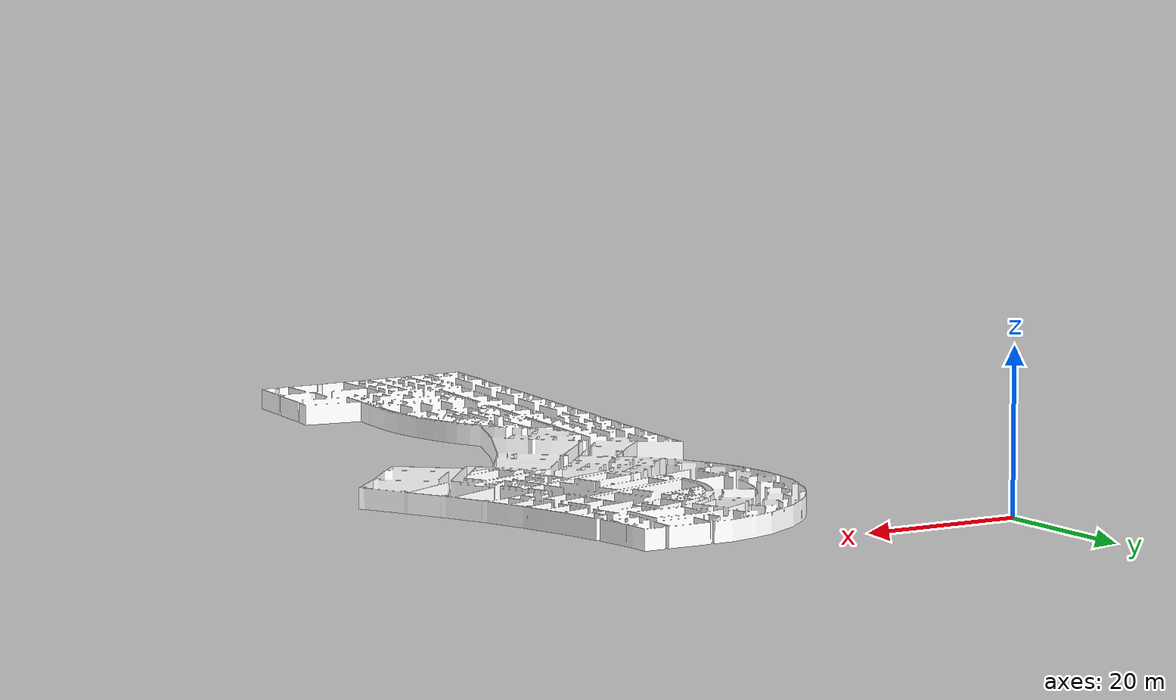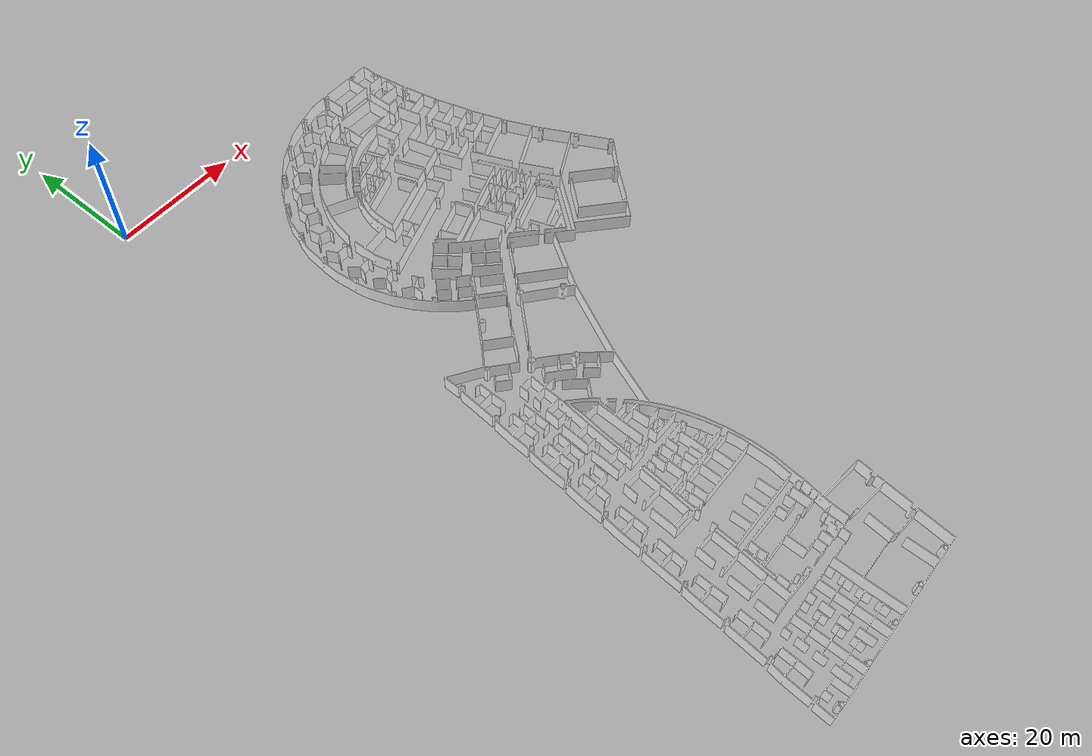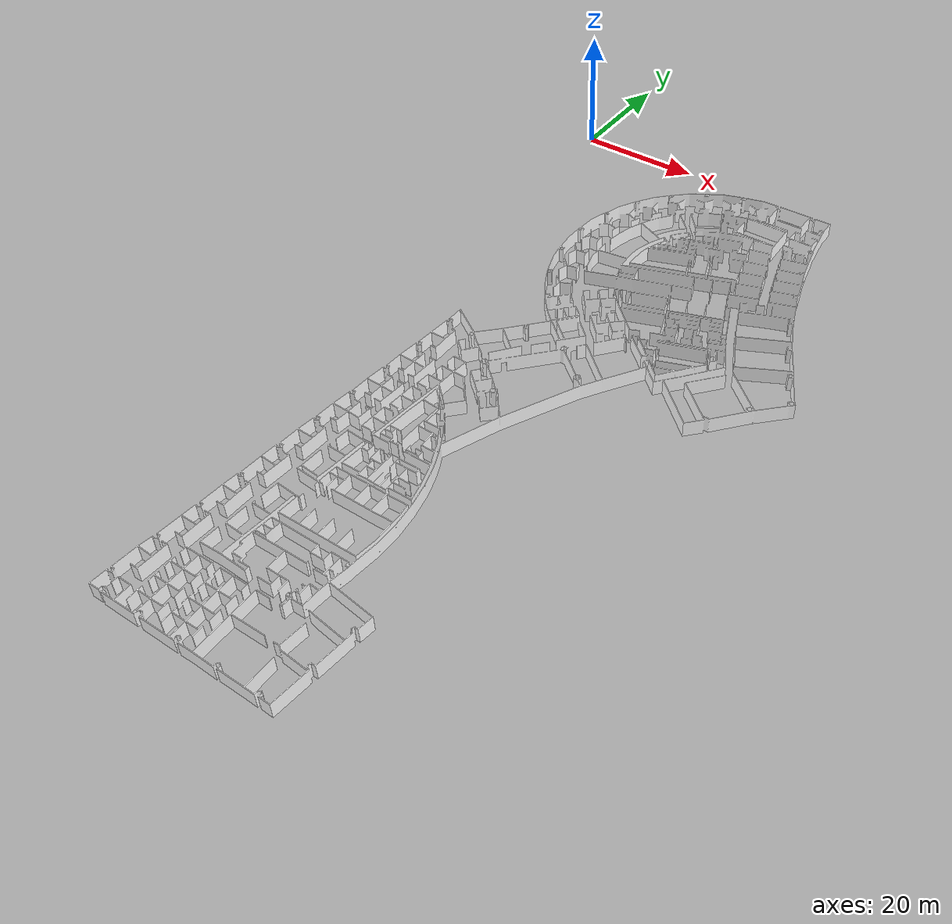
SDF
<?xml version='1.0' encoding='utf-8'?>
<sdf version="1.7">
  <model name="I2R_LVL9_LVL9">
    <static>true</static>
    <link name="wall_1">
      <visual name="wall_1">
        <geometry>
          <mesh>
            <uri>model://I2R_LVL9_LVL9/meshes/wall_1.obj</uri>
          </mesh>
        </geometry>
        <material>
          <diffuse>1.0 1.0 1.0</diffuse>
          <specular>0.1 0.1 0.1</specular>
          <pbr>
            <metal>
              <metalness>0.0</metalness>
              <albedo_map>model://I2R_LVL9_LVL9/meshes/default.png</albedo_map>
            </metal>
          </pbr>
          <script>
            <uri>model://I2R_LVL9_LVL9/meshes/</uri>
            <name>wall_1_Diffuse</name>
          </script>
        </material>
      </visual>
      <collision name="collision">
        <geometry>
          <mesh>
            <uri>model://I2R_LVL9_LVL9/meshes/wall_1.obj</uri>
          </mesh>
        </geometry>
        <surface>
          <contact>
            <collide_bitmask>0x01</collide_bitmask>
          </contact>
        </surface>
      </collision>
      <pose>4.692283879418491 -117.53603958108069 0 0 0 0</pose>
    </link>
  </model>
</sdf>
